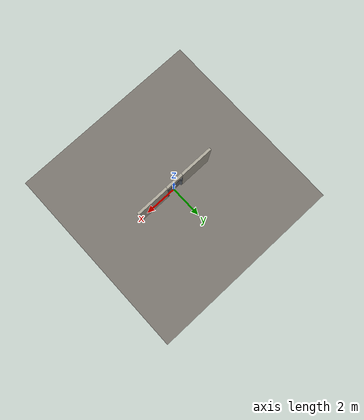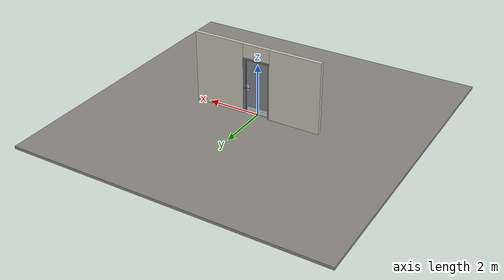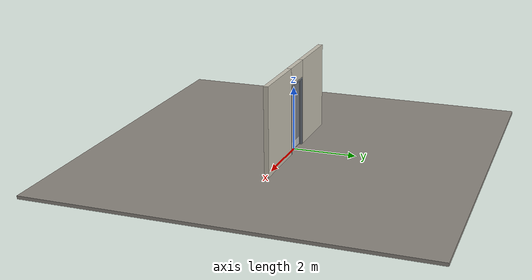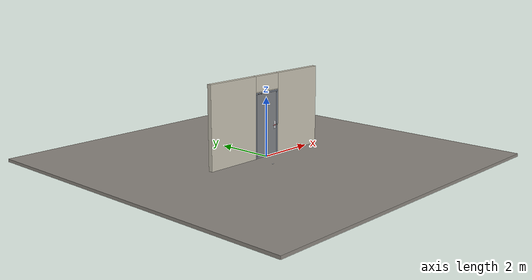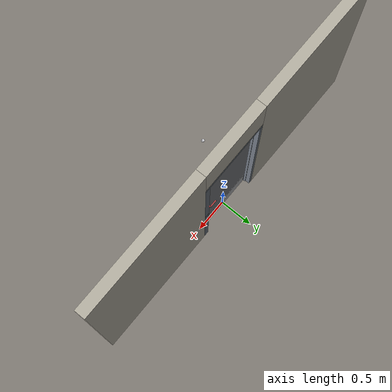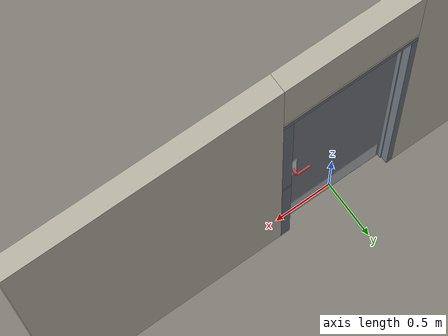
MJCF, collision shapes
<?xml version="1.0" ?>
<mujoco model="db0466_swing_single_full">
  <compiler angle="radian" meshdir="../../hardware" texturedir="../../textures" autolimits="true" inertiafromgeom="false"/>
  <option timestep="0.002" integrator="implicitfast" cone="elliptic" impratio="10" noslip_iterations="3">
    <flag multiccd="enable"/>
  </option>
  <size memory="16M"/>
  <default>
    <geom condim="4" solref="0.005 1" solimp="0.95 0.99 0.001"/>
    <joint solreflimit="0.005 1" solimplimit="0.95 0.99 0.001"/>
    <tendon solreflimit="0.005 1"/>
    <equality solref="0.002 1"/>
  </default>
  <visual>
    <headlight ambient="0.4 0.4 0.4" diffuse="0.7 0.7 0.7" specular="0.2 0.2 0.2"/>
    <quality shadowsize="4096"/>
    <map znear="0.01" zfar="60"/>
  </visual>
  <asset>
    <mesh name="card_reader_38c0bdb077" file="card_reader_38c0bdb077.obj"/>
    <mesh name="coat_hook_d622d37ad0" file="coat_hook_d622d37ad0.obj"/>
    <mesh name="hinge_e22b26c0c1" file="hinge_e22b26c0c1.obj"/>
    <mesh name="hinge_jamb_e1d088f8dc" file="hinge_jamb_e1d088f8dc.obj"/>
    <mesh name="lever_56c65af20a" file="lever_56c65af20a.obj"/>
    <mesh name="peephole_f829311a59" file="peephole_f829311a59.obj"/>
    <material name="mat_floor" rgba="0.55 0.53 0.5 1" specular="0.2" shininess="0.15" reflectance="0"/>
    <material name="mat_wall" rgba="0.78 0.76 0.7 1" specular="0.2" shininess="0.1" reflectance="0"/>
    <material name="mat_leaf" rgba="0.5 0.51 0.53 1" specular="0.2" shininess="0.31" reflectance="0"/>
    <material name="mat_hinge" rgba="0.65 0.66 0.68 1" specular="0.74" shininess="0.5" reflectance="0.36"/>
    <material name="mat_op_chrome" rgba="0.9 0.9 0.92 1" specular="0.8" shininess="0.9" reflectance="0.4"/>
    <material name="mat_trim" rgba="0.85 0.66 0.3 1" specular="0.8" shininess="0.75" reflectance="0.4"/>
    <material name="mat_reader" rgba="0.05 0.05 0.05 1" specular="0.38" shininess="0.3" reflectance="0.12"/>
    <material name="mat_bolt" rgba="0.75 0.76 0.77 1" specular="0.8" shininess="0.65" reflectance="0.4"/>
    <material name="mat_frame" rgba="0.45 0.48 0.52 1" specular="0.32" shininess="0.6" reflectance="0.08"/>
    <material name="mat_closer" rgba="0.22 0.17 0.13 1" specular="0.8" shininess="0.6" reflectance="0.4"/>
    <material name="mat_kick" rgba="0.75 0.76 0.77 1" specular="0.8" shininess="0.65" reflectance="0.4"/>
    <material name="mat_peephole" rgba="0.85 0.66 0.3 1" specular="0.8" shininess="0.75" reflectance="0.4"/>
    <material name="mat_hook" rgba="0.9 0.9 0.92 1" specular="0.8" shininess="0.9" reflectance="0.4"/>
    <material name="mat_stop" rgba="0.9 0.9 0.92 1" specular="0.8" shininess="0.9" reflectance="0.4"/>
    <texture name="skybox" type="skybox" builtin="gradient" rgb1="0.6 0.7 0.85" rgb2="0.9 0.92 0.95" width="256" height="256"/>
  </asset>
  <worldbody>
    <light name="sun" pos="1.5 -2.5 4" dir="-0.3 0.5 -0.8" directional="true" diffuse="0.8 0.8 0.8" specular="0.3 0.3 0.3" castshadow="true"/>
    <light name="fill" pos="-1.5 2.5 3" dir="0.3 -0.5 -0.7" directional="true" diffuse="0.35 0.35 0.4" castshadow="false"/>
    <camera name="robot_view" pos="0 -2.594313 1.812087" xyaxes="1 0 0 0 0.26963 0.962964" fovy="52"/>
    <camera name="far_view" pos="0 2.681312 1.812087" xyaxes="-1 0 0 0 -0.26963 0.962964" fovy="52"/>
    <camera name="iso" pos="2.004737 -2.172262 2.234138" xyaxes="0.741536 0.670913 0 -0.242917 0.268487 0.932151" fovy="46"/>
    <camera name="detail_handle" pos="0.4705 -0.877 1.296" xyaxes="0.97561 0.219512 0 -0.070934 0.315262 0.94635" fovy="38"/>
    <geom name="floor" type="box" size="6 6 0.05" pos="0 0 -0.05" material="mat_floor" group="0" contype="1" conaffinity="1" friction="0.8 0.005 0.0001" density="2400"/>
    <geom name="wall_left" type="box" size="0.99475 0.0725 1.3735" pos="-1.50525 0.0435 1.3735" material="mat_wall" group="0" contype="1" conaffinity="1" friction="0.6 0.005 0.0001" density="800"/>
    <geom name="wall_right" type="box" size="0.97975 0.0725 1.3735" pos="1.52025 0.0435 1.3735" material="mat_wall" group="0" contype="1" conaffinity="1" friction="0.6 0.005 0.0001" density="800"/>
    <geom name="wall_header" type="box" size="0.5255 0.0725 0.26" pos="0.015 0.0435 2.487" material="mat_wall" group="0" contype="1" conaffinity="1" friction="0.6 0.005 0.0001" density="800"/>
    <geom name="hinge_0_jamb" type="mesh" mesh="hinge_jamb_e1d088f8dc" pos="-0.4575 -0.029 0.259" material="mat_hinge" group="1" contype="0" conaffinity="0" density="7850"/>
    <geom name="hinge_1_jamb" type="mesh" mesh="hinge_jamb_e1d088f8dc" pos="-0.4575 -0.029 1.076" material="mat_hinge" group="1" contype="0" conaffinity="0" density="7850"/>
    <geom name="hinge_2_jamb" type="mesh" mesh="hinge_jamb_e1d088f8dc" pos="-0.4575 -0.029 1.963" material="mat_hinge" group="1" contype="0" conaffinity="0" density="7850"/>
    <geom name="jamb_hinge" type="box" size="0.025 0.0725 1.0735" pos="-0.4855 0.0435 1.0735" material="mat_frame" group="0" contype="1" conaffinity="1" friction="0.6 0.005 0.0001" density="300"/>
    <geom name="strike_1016_wall_n" type="box" size="0.04 0.05325 0.018" pos="0.5005 0.06275 1.016" material="mat_frame" group="0" contype="1" conaffinity="1" friction="0.6 0.005 0.0001" density="300"/>
    <geom name="strike_1016_wall_p" type="box" size="0.04 0.008 0.018" pos="0.5005 -0.0175 1.016" material="mat_frame" group="0" contype="1" conaffinity="1" friction="0.6 0.005 0.0001" density="300"/>
    <geom name="strike_1016_ramp" type="box" size="0.04 0.018028 0.018" pos="0.503782 -0.018312 1.016" quat="0.957092 0 0 0.289784" material="mat_frame" group="0" contype="1" conaffinity="1" friction="0.12 0.005 0.0001" density="300"/>
    <geom name="strike_1016_back" type="box" size="0.0285 0.0095 0.018" pos="0.512 0 1.016" material="mat_frame" group="0" contype="1" conaffinity="1" friction="0.6 0.005 0.0001" density="300"/>
    <geom name="jamb_strike_0" type="box" size="0.04 0.0725 0.499" pos="0.5005 0.0435 0.499" material="mat_frame" group="0" contype="1" conaffinity="1" friction="0.6 0.005 0.0001" density="300"/>
    <geom name="jamb_strike_1" type="box" size="0.04 0.0725 0.5565" pos="0.5005 0.0435 1.5905" material="mat_frame" group="0" contype="1" conaffinity="1" friction="0.6 0.005 0.0001" density="300"/>
    <geom name="jamb_head" type="box" size="0.5255 0.0725 0.025" pos="0.015 0.0435 2.172" material="mat_frame" group="0" contype="1" conaffinity="1" friction="0.6 0.005 0.0001" density="300"/>
    <geom name="head_stud" type="box" size="0.5255 0.0725 0.015" pos="0.015 0.0435 2.212" material="mat_wall" group="0" contype="1" conaffinity="1" friction="0.6 0.005 0.0001" density="500"/>
    <geom name="stop_hinge" type="box" size="0.0055 0.016 1.0735" pos="-0.455 0.0385 1.0735" material="mat_frame" group="0" contype="1" conaffinity="1" friction="0.6 0.005 0.0001" density="300"/>
    <geom name="stop_strike" type="box" size="0.0055 0.016 1.0735" pos="0.455 0.0385 1.0735" material="mat_frame" group="0" contype="1" conaffinity="1" friction="0.6 0.005 0.0001" density="300"/>
    <geom name="stop_head" type="box" size="0.4605 0.016 0.0055" pos="0 0.0385 2.1415" material="mat_frame" group="0" contype="1" conaffinity="1" friction="0.6 0.005 0.0001" density="300"/>
    <geom name="closer_concealed_slot" type="box" size="0.25 0.008 0.004" pos="-0.1605 -0.032 2.152" material="mat_closer" group="1" contype="0" conaffinity="0" density="2700"/>
    <geom name="floor_stop_dome" type="sphere" size="0.025" pos="-0.545135 -0.801201 0" material="mat_stop" group="0" contype="1" conaffinity="1" friction="0.6 0.005 0.0001" density="7000"/>
    <site name="approach_point" pos="0 -1.5 0" quat="1 0 0 0" size="0.05" rgba="0.2 0.9 0.2 0.5" group="4"/>
    <site name="goal_point" pos="0 1.5 0" quat="1 0 0 0" size="0.05" rgba="0.2 0.9 0.2 0.5" group="4"/>
    <site name="door_plane_center" pos="0 0 1.0735" quat="1 0 0 0" size="0.02" rgba="0.2 0.9 0.2 0.5" group="4"/>
    <body name="leaf" pos="-0.4605 0 0">
      <inertial pos="0.461875 0.000434 1.036929" mass="61.56907" quat="0.500612 -0.499855 -0.498962 -0.500569" diaginertia="4.463930735 24.28712244 28.726865549"/>
      <joint name="leaf_hinge" type="hinge" axis="0 0 -1" pos="0.003 -0.029 0" limited="true" range="0 1.658063" damping="10.268966" frictionloss="0.337372" stiffness="12.528677" springref="-2.635554" armature="0.02"/>
      <geom name="leaf_slab" type="box" size="0.457 0.022 1.067" pos="0.46 0 1.076" material="mat_leaf" group="0" contype="1" conaffinity="1" friction="0.4 0.005 0.0001" density="1"/>
      <geom name="hinge_0" type="mesh" mesh="hinge_e22b26c0c1" pos="0.003 -0.029 0.259" material="mat_hinge" group="1" contype="0" conaffinity="0" density="7850"/>
      <geom name="hinge_1" type="mesh" mesh="hinge_e22b26c0c1" pos="0.003 -0.029 1.076" material="mat_hinge" group="1" contype="0" conaffinity="0" density="7850"/>
      <geom name="hinge_2" type="mesh" mesh="hinge_e22b26c0c1" pos="0.003 -0.029 1.963" material="mat_hinge" group="1" contype="0" conaffinity="0" density="7850"/>
      <geom name="leaf_handle_escutcheon_n" type="box" size="0.0375 0.0015 0.13" pos="0.847 -0.0235 1.016" material="mat_op_chrome" group="1" contype="0" conaffinity="0" density="3000"/>
      <geom name="leaf_handle_escutcheon_p" type="box" size="0.0375 0.0015 0.13" pos="0.847 0.0235 1.016" material="mat_op_chrome" group="1" contype="0" conaffinity="0" density="3000"/>
      <geom name="leaf_handle_reader" type="mesh" mesh="card_reader_38c0bdb077" pos="0.847 -0.022 1.176" quat="0.707107 0.707107 0 0" material="mat_reader" group="1" contype="0" conaffinity="0" density="2000"/>
      <geom name="leaf_latch_bolt_faceplate" type="box" size="0.0006 0.014 0.028" pos="0.9164 0 1.016" material="mat_bolt" group="1" contype="0" conaffinity="0" density="8500"/>
      <geom name="kick_plate_p" type="box" size="0.427 0.0008 0.125" pos="0.46 0.0228 0.144" material="mat_kick" group="2" contype="0" conaffinity="0" density="7900"/>
      <geom name="peephole" type="mesh" mesh="peephole_f829311a59" pos="0.46 -0.022 1.509" quat="0.707107 0.707107 0 0" material="mat_peephole" group="2" contype="0" conaffinity="0" density="8500"/>
      <geom name="coat_hook" type="mesh" mesh="coat_hook_d622d37ad0" pos="0.46 0.022 1.793" quat="-0.707107 0.707107 0 0" material="mat_hook" group="2" contype="0" conaffinity="0" density="7000"/>
      <site name="leaf_edge_mid" pos="0.917 0 1.067" quat="1 0 0 0" size="0.02" rgba="0.2 0.9 0.2 0.5" group="4"/>
      <body name="leaf_handle" pos="0.847 0 1.016">
        <inertial pos="-0.034904 0 0" mass="0.739068" quat="0.707107 0 0 -0.707107" diaginertia="0.001260094 0.003272501 0.004494637"/>
        <joint name="leaf_handle_hinge" type="hinge" axis="0 -1 0" limited="true" range="0 0.87" damping="0.231314" frictionloss="0.06" stiffness="1.1" springref="-0.454545" armature="0.01"/>
        <geom name="leaf_handle_spindle" type="cylinder" size="0.006 0.034" pos="0 0 0" quat="0.707107 -0.707107 0 0" material="mat_op_chrome" group="1" contype="0" conaffinity="0" density="7850"/>
        <geom name="leaf_handle_lever_n" type="mesh" mesh="lever_56c65af20a" pos="0 -0.022 0" quat="0.707107 0.707107 0 0" material="mat_op_chrome" group="1" contype="0" conaffinity="0" density="3000"/>
        <geom name="leaf_handle_lever_col_n" type="capsule" size="0.0095 0.0505" pos="-0.06 -0.077 0" quat="0.707107 0 -0.707107 0" material="mat_op_chrome" group="3" contype="1" conaffinity="1" rgba="0.8 0.3 0.3 0.25" friction="0.7 0.01 0.0001" density="3000"/>
        <geom name="leaf_handle_hub_col_n" type="cylinder" size="0.012 0.022" pos="0 -0.052 0" quat="0.707107 -0.707107 0 0" material="mat_op_chrome" group="3" contype="1" conaffinity="1" rgba="0.8 0.3 0.3 0.25" friction="0.6 0.005 0.0001" density="3000"/>
        <geom name="leaf_handle_lever_p" type="mesh" mesh="lever_56c65af20a" pos="0 0.022 0" quat="-0.707107 0.707107 0 0" material="mat_op_chrome" group="1" contype="0" conaffinity="0" density="3000"/>
        <geom name="leaf_handle_lever_col_p" type="capsule" size="0.0095 0.0505" pos="-0.06 0.077 0" quat="0.707107 0 -0.707107 0" material="mat_op_chrome" group="3" contype="1" conaffinity="1" rgba="0.8 0.3 0.3 0.25" friction="0.7 0.01 0.0001" density="3000"/>
        <geom name="leaf_handle_hub_col_p" type="cylinder" size="0.012 0.022" pos="0 0.052 0" quat="0.707107 -0.707107 0 0" material="mat_op_chrome" group="3" contype="1" conaffinity="1" rgba="0.8 0.3 0.3 0.25" friction="0.6 0.005 0.0001" density="3000"/>
        <site name="leaf_handle_grip_n" pos="-0.096 -0.077 0" quat="1 0 0 0" size="0.012" rgba="0.2 0.9 0.2 0.5" group="4"/>
        <site name="leaf_handle_grip_p" pos="-0.096 0.077 0" quat="1 0 0 0" size="0.012" rgba="0.2 0.9 0.2 0.5" group="4"/>
      </body>
      <body name="leaf_latch_bolt" pos="0.917 0 1.016">
        <inertial pos="-0.0055 0 0" mass="0.074627" quat="0.92388 -0.382683 0 0" diaginertia="0.000002271 0.000013255 0.000013255"/>
        <joint name="leaf_latch_bolt_slide" type="slide" axis="-1 0 0" limited="true" range="0 0.019" damping="2" frictionloss="0.3" stiffness="550" springref="-0.01" armature="0.1"/>
        <geom name="leaf_latch_bolt_capsule" type="capsule" size="0.008 0.0165" pos="-0.0055 0 0" quat="0.707107 0 0.707107 0" material="mat_bolt" group="0" contype="1" conaffinity="1" friction="0.2 0.005 0.0001" density="8500"/>
      </body>
    </body>
  </worldbody>
  <tendon>
    <fixed name="leaf_latch_bolt_coupling" limited="true" range="0 10">
      <joint joint="leaf_latch_bolt_slide" coef="1"/>
      <joint joint="leaf_handle_hinge" coef="-0.023457"/>
    </fixed>
  </tendon>
  <sensor>
    <jointpos name="leaf_hinge_pos" joint="leaf_hinge"/>
    <jointvel name="leaf_hinge_vel" joint="leaf_hinge"/>
    <jointpos name="leaf_handle_hinge_pos" joint="leaf_handle_hinge"/>
    <jointvel name="leaf_handle_hinge_vel" joint="leaf_handle_hinge"/>
    <jointpos name="leaf_latch_bolt_slide_pos" joint="leaf_latch_bolt_slide"/>
    <jointvel name="leaf_latch_bolt_slide_vel" joint="leaf_latch_bolt_slide"/>
  </sensor>
</mujoco>
